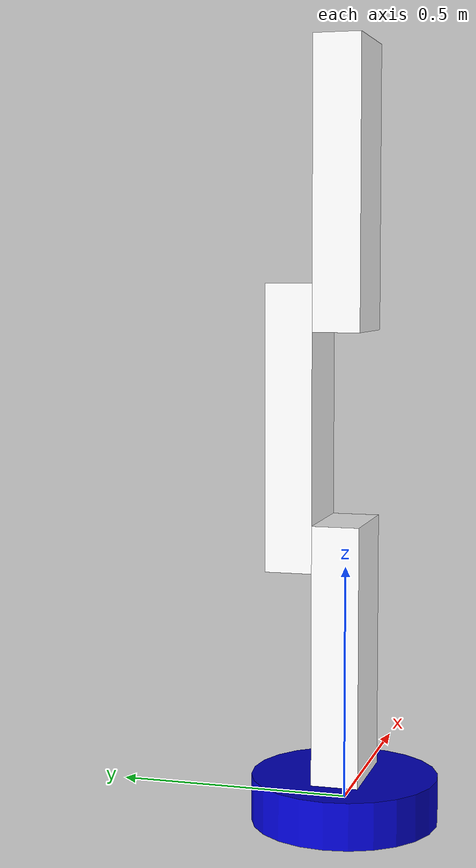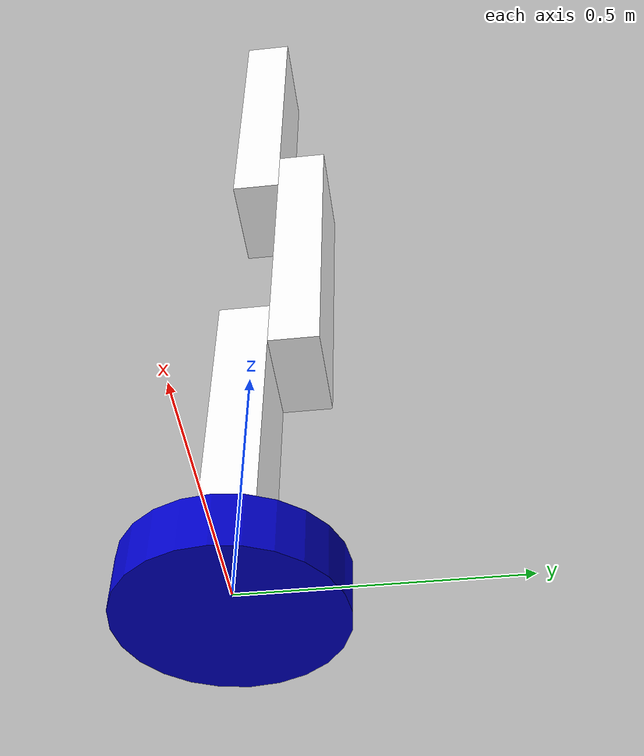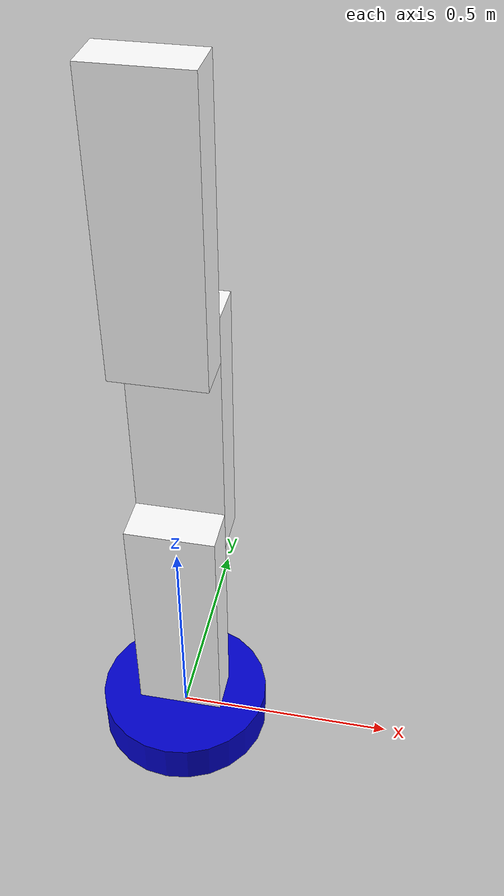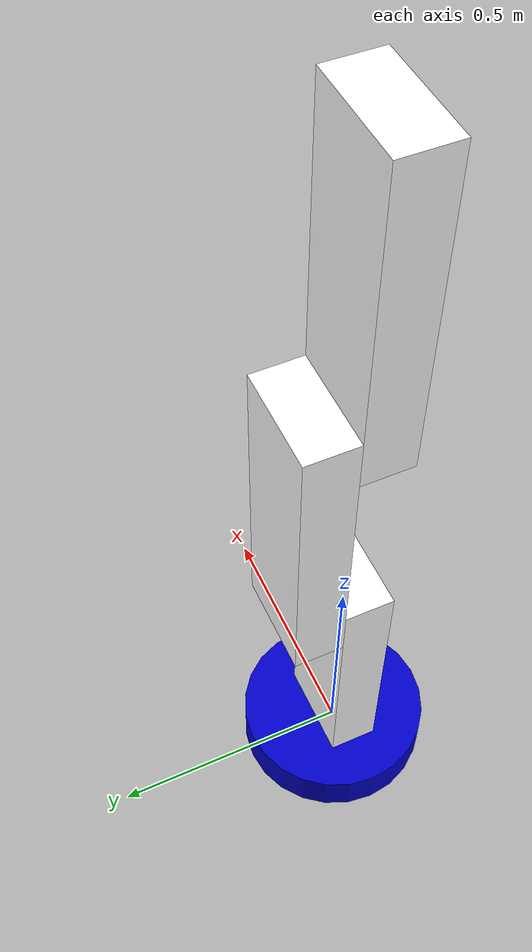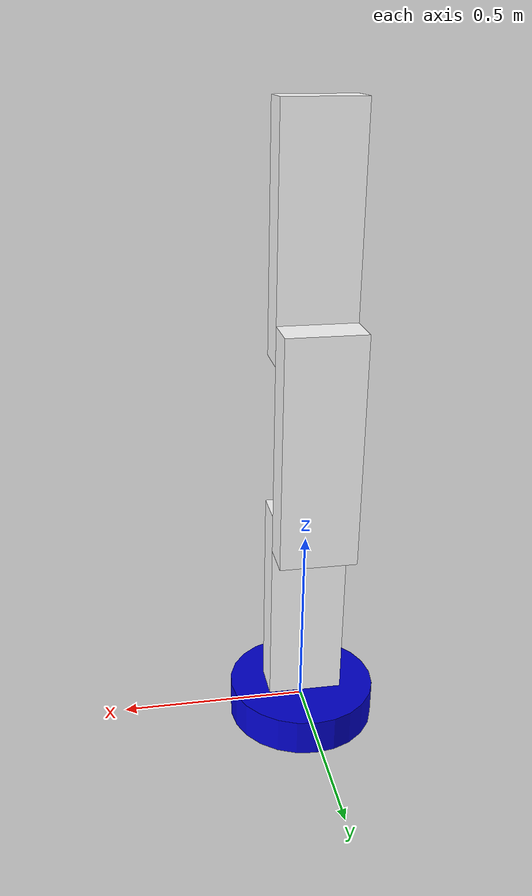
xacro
<?xml version="1.0"?>
<!-- source:http://wiki.ros.org/urdf/Tutorials -->
<robot name="two_link_manipulator">

  <material name="blue">
    <color rgba="0 0 0.8 1"/>
  </material>

  <material name="white">
    <color rgba="1 1 1 1"/>
  </material>

  <link name="base_link">
    <visual>
      <geometry>
        <cylinder length="0.1" radius="0.2"/>
      </geometry>
      <material name="blue"/>
    </visual>
  </link>

  <link name="base_arm">
    <visual>
      <geometry>
        <box size="0.2 0.1 0.6"/>
      </geometry>
      <origin rpy="0 0 0" xyz="0 0 0"/>
      <material name="white"/>
    </visual>
  </link>

  <joint name="base_to_base_arm" type="fixed">
    <origin xyz="0 0 0.3"/>
    <parent link="base_link"/>
    <child link="base_arm"/>
    <dynamics damping="0.0" friction="0.0"/>
  </joint>

  <link name="lower_arm">
    <visual>
      <geometry>
        <box size="0.6 0.1 0.2"/>
      </geometry>
      <origin rpy="0 1.57075 0" xyz="0 0 0"/>
      <material name="white"/>
    </visual>
  </link>

  <joint name="base_to_lower_arm" type="revolute">
    <parent link="base_arm"/>
    <child link="lower_arm"/>
    <origin xyz="0 0.1 0.5"/>

    <limit effort="1" velocity="1.0" lower="-1.57" upper="1.57"/>
    <axis xyz="0 1 0" />
    <dynamics damping="0.0" friction="0.0"/>
  </joint>

<link name="upper_arm">
    <visual>
      <geometry>
        <box size="0.6 0.1 0.2"/>
      </geometry>
      <origin rpy="0 1.57075 0" xyz="0 0 0"/>
      <material name="white"/>
    </visual>
  </link>

<joint name="base_to_upper_arm" type="revolute">
    <parent link="lower_arm"/>
    <child link="upper_arm"/>
    <axis xyz="0 1 0" />
    <origin xyz="0 -0.1 0.5"/>
    <limit effort="1" velocity="1.0" lower="-1.57" upper="1.57"/>
    <dynamics damping="0.0" friction="0.0"/>
  </joint>
</robot>
